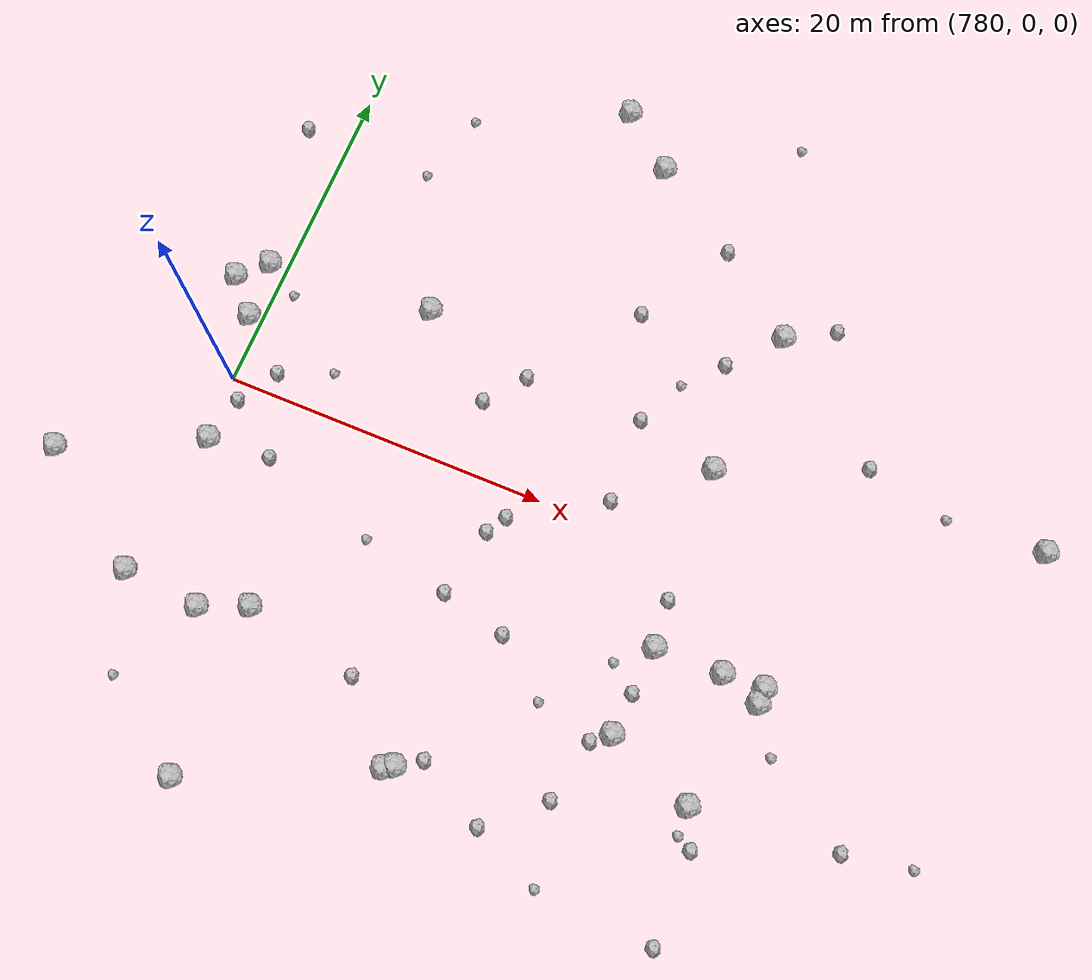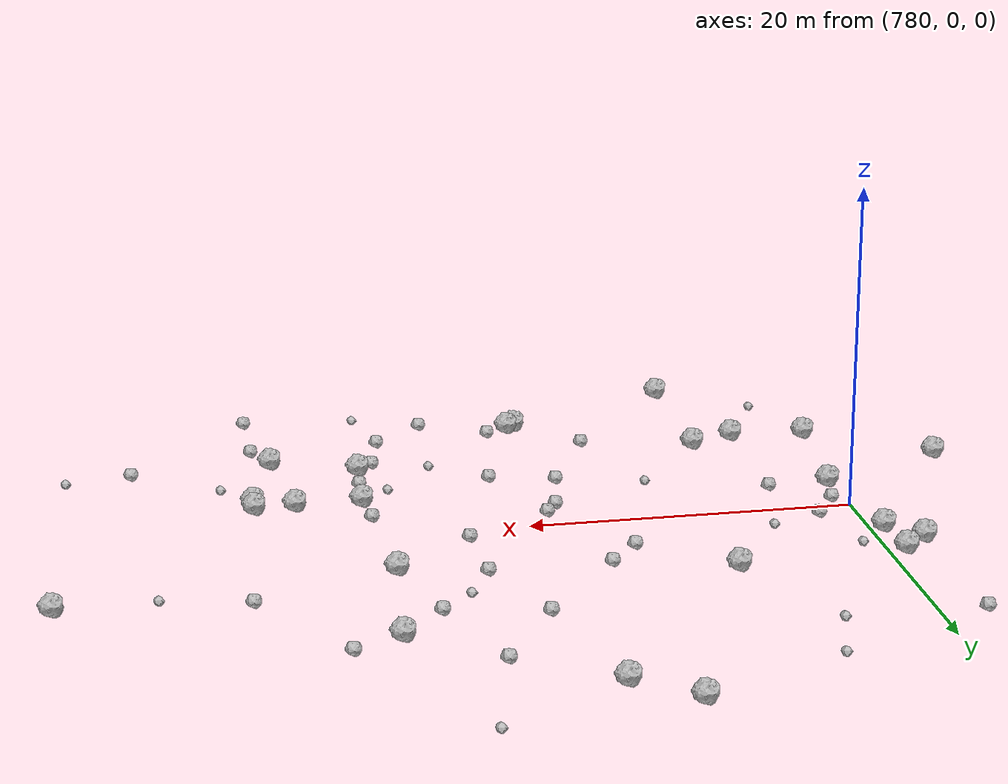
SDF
<sdf version="1.6">
 <world name="default">
  <include><uri>model://sun</uri></include>
  <model name="rock1_20_4">
   <include><uri>model://rock1</uri><pose>780.3335105532167 -3.9739306151927742 0.5 0 0 0</pose></include>
  </model>
  <model name="rock1_20_5">
   <include><uri>model://rock1</uri><pose>799.0584645901159 22.807687650997913 0.5 0 0 0</pose></include>
  </model>
  <model name="rock1_20_6">
   <include><uri>model://rock1</uri><pose>797.8506914690141 -17.77031698015066 0.5 0 0 0</pose></include>
  </model>
  <model name="rock1_20_7">
   <include><uri>model://rock1</uri><pose>787.0366511724583 -22.751677062951643 0.5 0 0 0</pose></include>
  </model>
  <model name="rock1_20_8">
   <include><uri>model://rock1</uri><pose>809.0559040061213 -11.113991578675464 0.5 0 0 0</pose></include>
  </model>
  <model name="rock1_20_9">
   <include><uri>model://rock1</uri><pose>798.3963728615495 -17.429971035954782 0.5 0 0 0</pose></include>
  </model>
  <model name="rock1_20_10">
   <include><uri>model://rock1</uri><pose>828.5118736253638 8.329572919769838 0.5 0 0 0</pose></include>
  </model>
  <model name="rock1_20_11">
   <include><uri>model://rock1</uri><pose>784.1421094251791 -13.421970299446517 0.5 0 0 0</pose></include>
  </model>
  <model name="rock1_20_12">
   <include><uri>model://rock1</uri><pose>816.0982040024123 -5.375514536878324 0.5 0 0 0</pose></include>
  </model>
  <model name="rock1_20_13">
   <include><uri>model://rock1</uri><pose>779.3569134142094 -13.032843033885293 0.5 0 0 0</pose></include>
  </model>
  <model name="rock1_20_14">
   <include><uri>model://rock1</uri><pose>808.8321689394689 5.667082574668925 0.5 0 0 0</pose></include>
  </model>
  <model name="rock1_20_15">
   <include><uri>model://rock1</uri><pose>814.4309662703758 -13.206775627294096 0.5 0 0 0</pose></include>
  </model>
  <model name="rock1_20_16">
   <include><uri>model://rock1</uri><pose>778.94712989658 7.6137221414557175 0.5 0 0 0</pose></include>
  </model>
  <model name="rock1_20_17">
   <include><uri>model://rock1</uri><pose>809.7973903152841 15.05723266987934 0.5 0 0 0</pose></include>
  </model>
  <model name="rock1_20_18">
   <include><uri>model://rock1</uri><pose>813.5948644440551 -5.4974026481043055 0.5 0 0 0</pose></include>
  </model>
  <model name="rock1_20_19">
   <include><uri>model://rock1</uri><pose>816.0825108542062 -6.329172082440884 0.5 0 0 0</pose></include>
  </model>
  <model name="rock1_20_20">
   <include><uri>model://rock1</uri><pose>777.3494115733772 6.075205730505708 0.5 0 0 0</pose></include>
  </model>
  <model name="rock1_20_21">
   <include><uri>model://rock1</uri><pose>772.1212195396963 -7.899332354896327 0.5 0 0 0</pose></include>
  </model>
  <model name="rock1_20_22">
   <include><uri>model://rock1</uri><pose>809.4712289607688 -5.589310536247702 0.5 0 0 0</pose></include>
  </model>
  <model name="rock1_20_23">
   <include><uri>model://rock1</uri><pose>787.0010543974971 -12.253705295713047 0.5 0 0 0</pose></include>
  </model>
  <model name="rock1_20_24">
   <include><uri>model://rock1</uri><pose>789.307897517379 8.550391415572513 0.5 0 0 0</pose></include>
  </model>
  <model name="rock1_20_25">
   <include><uri>model://rock1</uri><pose>779.2122260950139 4.02005816438853 0.5 0 0 0</pose></include>
  </model>
  <model name="rock1_20_26">
   <include><uri>model://rock1</uri><pose>795.6319001800124 25.629920183791064 0.5 0 0 0</pose></include>
  </model>
  <model name="rock2_20_0">
   <include><uri>model://rock2</uri><pose>808.0159958261156 -11.969540951629885 0.3 0 0 0</pose></include>
  </model>
  <model name="rock2_20_1">
   <include><uri>model://rock2</uri><pose>807.2118824131044 -15.842972826325177 0.3 0 0 0</pose></include>
  </model>
  <model name="rock2_20_2">
   <include><uri>model://rock2</uri><pose>798.5727549149473 -1.7096768838273597 0.3 0 0 0</pose></include>
  </model>
  <model name="rock2_20_3">
   <include><uri>model://rock2</uri><pose>804.0166634164931 -18.75019756074289 0.3 0 0 0</pose></include>
  </model>
  <model name="rock2_20_4">
   <include><uri>model://rock2</uri><pose>797.8503608209666 -2.956842411399599 0.3 0 0 0</pose></include>
  </model>
  <model name="rock2_20_5">
   <include><uri>model://rock2</uri><pose>809.1724463570025 -2.7029004352552803 0.3 0 0 0</pose></include>
  </model>
  <model name="rock2_20_6">
   <include><uri>model://rock2</uri><pose>823.1858835813493 -12.390371270279442 0.3 0 0 0</pose></include>
  </model>
  <model name="rock2_20_7">
   <include><uri>model://rock2</uri><pose>777.2407420868044 16.865863586550617 0.3 0 0 0</pose></include>
  </model>
  <model name="rock2_20_8">
   <include><uri>model://rock2</uri><pose>799.798475243715 -16.504374580490666 0.3 0 0 0</pose></include>
  </model>
  <model name="rock2_20_9">
   <include><uri>model://rock2</uri><pose>803.6875004833574 6.897650702637762 0.3 0 0 0</pose></include>
  </model>
  <model name="rock2_20_10">
   <include><uri>model://rock2</uri><pose>815.4305471179658 -15.412729882851153 0.3 0 0 0</pose></include>
  </model>
  <model name="rock2_20_11">
   <include><uri>model://rock2</uri><pose>809.2378221106917 -8.520878116528337 0.3 0 0 0</pose></include>
  </model>
  <model name="rock2_20_12">
   <include><uri>model://rock2</uri><pose>804.6724185539068 19.083376094990953 0.3 0 0 0</pose></include>
  </model>
  <model name="rock2_20_13">
   <include><uri>model://rock2</uri><pose>801.2427263505641 13.238647747704015 0.3 0 0 0</pose></include>
  </model>
  <model name="rock2_20_14">
   <include><uri>model://rock2</uri><pose>780.8766576388218 -1.1354981573186436 0.3 0 0 0</pose></include>
  </model>
  <model name="rock2_20_15">
   <include><uri>model://rock2</uri><pose>794.4935746822072 4.407352038915121 0.3 0 0 0</pose></include>
  </model>
  <model name="rock2_20_16">
   <include><uri>model://rock2</uri><pose>803.8887532894163 1.5659510534215642 0.3 0 0 0</pose></include>
  </model>
  <model name="rock2_20_17">
   <include><uri>model://rock2</uri><pose>796.3693801593638 6.7859152183323275 0.3 0 0 0</pose></include>
  </model>
  <model name="rock2_20_18">
   <include><uri>model://rock2</uri><pose>807.143230995687 12.090305976974307 0.3 0 0 0</pose></include>
  </model>
  <model name="rock2_20_19">
   <include><uri>model://rock2</uri><pose>784.1675465763715 -3.699341922533332 0.3 0 0 0</pose></include>
  </model>
  <model name="rock2_20_20">
   <include><uri>model://rock2</uri><pose>812.6790635779882 16.687008316259693 0.3 0 0 0</pose></include>
  </model>
  <model name="rock2_20_21">
   <include><uri>model://rock2</uri><pose>797.0124321187983 -7.244838936882104 0.3 0 0 0</pose></include>
  </model>
  <model name="rock2_20_22">
   <include><uri>model://rock2</uri><pose>794.074101151691 -13.70371531763982 0.3 0 0 0</pose></include>
  </model>
  <model name="rock2_20_23">
   <include><uri>model://rock2</uri><pose>815.4179068536863 -21.033680649545534 0.3 0 0 0</pose></include>
  </model>
  <model name="rock2_20_24">
   <include><uri>model://rock2</uri><pose>801.0885928068943 -8.230447330116569 0.3 0 0 0</pose></include>
  </model>
  <model name="rock2_20_25">
   <include><uri>model://rock2</uri><pose>782.3492060825688 1.3011453709106071 0.3 0 0 0</pose></include>
  </model>
  <model name="rock2_20_26">
   <include><uri>model://rock2</uri><pose>817.3400071307542 9.248593082937987 0.3 0 0 0</pose></include>
  </model>
  <model name="rock3_20_0">
   <include><uri>model://rock3</uri><pose>785.4114749703107 16.76438385051611 0.2 0 0 0</pose></include>
  </model>
  <model name="rock3_20_1">
   <include><uri>model://rock3</uri><pose>791.5172570501348 -6.0696341251086885 0.2 0 0 0</pose></include>
  </model>
  <model name="rock3_20_2">
   <include><uri>model://rock3</uri><pose>822.5173675708015 7.9901896860590895 0.2 0 0 0</pose></include>
  </model>
  <model name="rock3_20_3">
   <include><uri>model://rock3</uri><pose>807.5842572230762 -7.290675803640571 0.2 0 0 0</pose></include>
  </model>
  <model name="rock3_20_4">
   <include><uri>model://rock3</uri><pose>817.7980381261721 -8.945874559161904 0.2 0 0 0</pose></include>
  </model>
  <model name="rock3_20_5">
   <include><uri>model://rock3</uri><pose>827.2293162182475 -11.701986287105225 0.2 0 0 0</pose></include>
  </model>
  <model name="rock3_20_6">
   <include><uri>model://rock3</uri><pose>781.1110309763271 6.243831973255695 0.2 0 0 0</pose></include>
  </model>
  <model name="rock3_20_7">
   <include><uri>model://rock3</uri><pose>814.4975639391663 -14.954719337885082 0.2 0 0 0</pose></include>
  </model>
  <model name="rock3_20_8">
   <include><uri>model://rock3</uri><pose>804.4721702172587 -11.037752891805962 0.2 0 0 0</pose></include>
  </model>
  <model name="rock3_20_9">
   <include><uri>model://rock3</uri><pose>805.1227844305739 9.847070827255322 0.2 0 0 0</pose></include>
  </model>
  <model name="rock3_20_10">
   <include><uri>model://rock3</uri><pose>808.2097543502325 -20.6597772238594 0.2 0 0 0</pose></include>
  </model>
  <model name="rock3_20_11">
   <include><uri>model://rock3</uri><pose>785.5049024972269 2.597616259751767 0.2 0 0 0</pose></include>
  </model>
  <model name="rock3_20_12">
   <include><uri>model://rock3</uri><pose>786.7516602100626 21.35077810462802 0.2 0 0 0</pose></include>
  </model>
  <model name="rock3_20_13">
   <include><uri>model://rock3</uri><pose>806.5174395312199 27.306005770884624 0.2 0 0 0</pose></include>
  </model>
  <model name="rock3_20_14">
   <include><uri>model://rock3</uri><pose>781.3848375964988 -18.87497242974092 0.2 0 0 0</pose></include>
  </model>
 </world>
</sdf>
